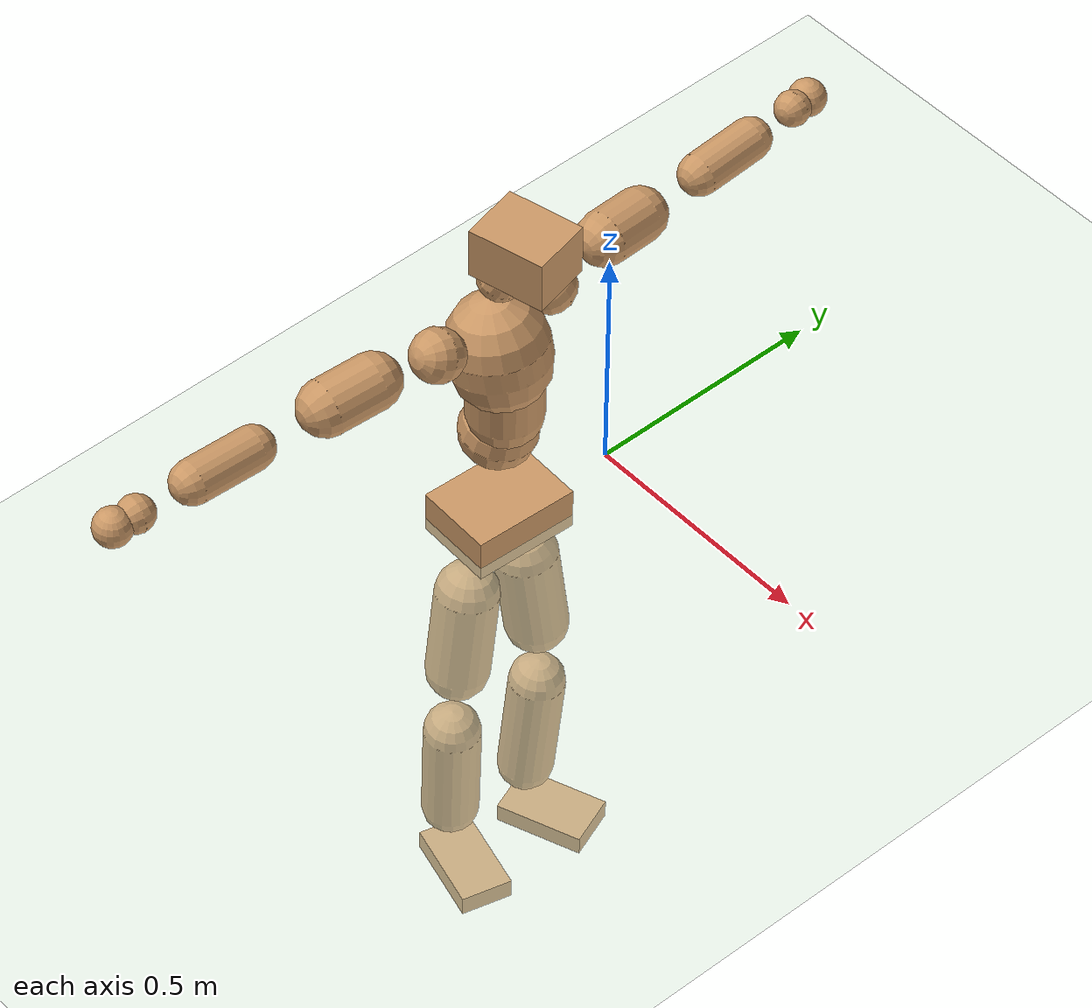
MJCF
<mujoco model="humanoid">
  <compiler coordinate="local" angle="radian"/>
  <default>
    <joint damping="0.0" armature="0.01" stiffness="0.0" limited="true"/>
    <geom conaffinity="1" condim="3" contype="7" margin="0.001" rgba="0.8 0.6 .4 1"/>
  </default>
  <asset>
    <texture type="skybox" builtin="gradient" rgb1=".4 .5 .6" rgb2="0 0 0" width="100" height="100"/>
    <texture builtin="flat" height="1278" mark="cross" markrgb="1 1 1" name="texgeom" random="0.01" rgb1="0.8 0.6 0.4" rgb2="0.8 0.6 0.4" type="cube" width="127"/>
    <texture builtin="checker" height="100" name="texplane" rgb1="0 0 0" rgb2="0.8 0.8 0.8" type="2d" width="100"/>
    <material name="MatPlane" reflectance="0.5" shininess="1" specular="1" texrepeat="60 60" texture="texplane"/>
    <material name="geom" texture="texgeom" texuniform="true"/>
  </asset>
  <worldbody>
    <light cutoff="100" diffuse="1 1 1" dir="-0 0 -1.3" directional="true" exponent="1" pos="0 0 1.3" specular=".1 .1 .1"/>
    <geom conaffinity="1" condim="3" name="floor" pos="0 0 0" rgba="0.8 0.9 0.8 1" size="100 100 .2" type="plane" material="MatPlane"/>
    <body name="Pelvis" pos="-0.0013 -0.252 0.0231">
      <freejoint name="Pelvis"/>
      <geom type="box" contype="1" conaffinity="1" density="5359.374271" pos="-0.0127 0.0005 -0.0084" size="0.0818 0.1088 0.0452" quat="0.9998 0.0000 0.0000 -0.0214" name="Pelvis"/>
      <body name="L_Hip" pos="-0.021 0.0606 -0.0839">
        <joint name="L_Hip_x" type="hinge" pos="0 0 0" axis="1 0 0" stiffness="1600" damping="160" armature="0.02" range="-180.0000 180.0000"/>
        <joint name="L_Hip_y" type="hinge" pos="0 0 0" axis="0 1 0" stiffness="1600" damping="160" armature="0.02" range="-180.0000 180.0000"/>
        <joint name="L_Hip_z" type="hinge" pos="0 0 0" axis="0 0 1" stiffness="1600" damping="160" armature="0.02" range="-180.0000 180.0000"/>
        <geom type="capsule" contype="1" conaffinity="1" density="2040.816327" size="0.0634" fromto="0.0026 0.0110 -0.0927 0.0083 0.0348 -0.2947" name="L_Hip"/>
        <body name="L_Knee" pos="0.0109 0.0458 -0.3874">
          <joint name="L_Knee_x" type="hinge" pos="0 0 0" axis="1 0 0" stiffness="1600" damping="160" armature="0.02" range="-180.0000 180.0000"/>
          <joint name="L_Knee_y" type="hinge" pos="0 0 0" axis="0 1 0" stiffness="1600" damping="160" armature="0.02" range="-180.0000 180.0000"/>
          <joint name="L_Knee_z" type="hinge" pos="0 0 0" axis="0 0 1" stiffness="1600" damping="160" armature="0.02" range="-180.0000 180.0000"/>
          <geom type="capsule" contype="1" conaffinity="1" density="1234.567901" size="0.056" fromto="-0.0073 -0.0029 -0.0856 -0.0290 -0.0117 -0.3392" name="L_Knee"/>
          <body name="L_Ankle" pos="-0.0364 -0.0146 -0.4248">
            <joint name="L_Ankle_x" type="hinge" pos="0 0 0" axis="1 0 0" stiffness="1600" damping="160" armature="0.02" range="-180.0000 180.0000"/>
            <joint name="L_Ankle_y" type="hinge" pos="0 0 0" axis="0 1 0" stiffness="1600" damping="160" armature="0.02" range="-180.0000 180.0000"/>
            <joint name="L_Ankle_z" type="hinge" pos="0 0 0" axis="0 0 1" stiffness="1600" damping="160" armature="0.02" range="-180.0000 180.0000"/>
            <geom type="box" contype="1" conaffinity="1" density="1000.000052" pos="0.0621 0.0232 -0.0310" size="0.0911 0.0553 0.0206" quat="0.9841 0.0000 0.0000 0.1777" name="L_Ankle"/>
            <body name="L_Toe" pos="0.1242 0.0464 -0.0619">
              <joint name="L_Toe_x" type="hinge" pos="0 0 0" axis="1 0 0" stiffness="1000" damping="100" armature="0.02" range="-180.0000 180.0000"/>
              <joint name="L_Toe_y" type="hinge" pos="0 0 0" axis="0 1 0" stiffness="1000" damping="100" armature="0.02" range="-180.0000 180.0000"/>
              <joint name="L_Toe_z" type="hinge" pos="0 0 0" axis="0 0 1" stiffness="1000" damping="100" armature="0.02" range="-180.0000 180.0000"/>
              <geom type="box" contype="1" conaffinity="1" density="7933596.762655" pos="0.0000 0.0000 0.0308" size="0.0011 0.0026 0.001" quat="0.9833 0.0000 0.0000 0.1820" name="L_Toe"/>
            </body>
          </body>
        </body>
      </body>
      <body name="R_Hip" pos="-0.0183 -0.0614 -0.0912">
        <joint name="R_Hip_x" type="hinge" pos="0 0 0" axis="1 0 0" stiffness="1600" damping="160" armature="0.02" range="-180.0000 180.0000"/>
        <joint name="R_Hip_y" type="hinge" pos="0 0 0" axis="0 1 0" stiffness="1600" damping="160" armature="0.02" range="-180.0000 180.0000"/>
        <joint name="R_Hip_z" type="hinge" pos="0 0 0" axis="0 0 1" stiffness="1600" damping="160" armature="0.02" range="-180.0000 180.0000"/>
        <geom type="capsule" contype="1" conaffinity="1" density="2040.816327" size="0.0627" fromto="-0.0006 -0.0109 -0.0921 -0.0019 -0.0343 -0.2894" name="R_Hip"/>
        <body name="R_Knee" pos="-0.0026 -0.0452 -0.3815">
          <joint name="R_Knee_x" type="hinge" pos="0 0 0" axis="1 0 0" stiffness="1600" damping="160" armature="0.02" range="-180.0000 180.0000"/>
          <joint name="R_Knee_y" type="hinge" pos="0 0 0" axis="0 1 0" stiffness="1600" damping="160" armature="0.02" range="-180.0000 180.0000"/>
          <joint name="R_Knee_z" type="hinge" pos="0 0 0" axis="0 0 1" stiffness="1600" damping="160" armature="0.02" range="-180.0000 180.0000"/>
          <geom type="capsule" contype="1" conaffinity="1" density="1234.567901" size="0.0564" fromto="-0.0072 0.0039 -0.0861 -0.0276 0.0149 -0.3302" name="R_Knee"/>
          <body name="R_Ankle" pos="-0.0348 0.0188 -0.4162">
            <joint name="R_Ankle_x" type="hinge" pos="0 0 0" axis="1 0 0" stiffness="1600" damping="160" armature="0.02" range="-180.0000 180.0000"/>
            <joint name="R_Ankle_y" type="hinge" pos="0 0 0" axis="0 1 0" stiffness="1600" damping="160" armature="0.02" range="-180.0000 180.0000"/>
            <joint name="R_Ankle_z" type="hinge" pos="0 0 0" axis="0 0 1" stiffness="1600" damping="160" armature="0.02" range="-180.0000 180.0000"/>
            <geom type="box" contype="1" conaffinity="1" density="1000.00005" pos="0.0674 -0.0177 -0.0307" size="0.0947 0.0529 0.0216" quat="0.9918 0.0000 0.0000 -0.1279" name="R_Ankle"/>
            <body name="R_Toe" pos="0.1349 -0.0354 -0.0614">
              <joint name="R_Toe_x" type="hinge" pos="0 0 0" axis="1 0 0" stiffness="1000" damping="100" armature="0.02" range="-180.0000 180.0000"/>
              <joint name="R_Toe_y" type="hinge" pos="0 0 0" axis="0 1 0" stiffness="1000" damping="100" armature="0.02" range="-180.0000 180.0000"/>
              <joint name="R_Toe_z" type="hinge" pos="0 0 0" axis="0 0 1" stiffness="1000" damping="100" armature="0.02" range="-180.0000 180.0000"/>
              <geom type="box" contype="1" conaffinity="1" density="8256009.935906" pos="0.0000 0.0000 0.0317" size="0.001 0.0026 0.0011" quat="0.9929 0.0000 0.0000 -0.1193" name="R_Toe"/>
            </body>
          </body>
        </body>
      </body>
      <body name="Torso" pos="-0.0369 0.004 0.1247">
        <joint name="Torso_x" type="hinge" pos="0 0 0" axis="1 0 0" stiffness="2000" damping="200" armature="0.02" range="-180.0000 180.0000"/>
        <joint name="Torso_y" type="hinge" pos="0 0 0" axis="0 1 0" stiffness="2000" damping="200" armature="0.02" range="-180.0000 180.0000"/>
        <joint name="Torso_z" type="hinge" pos="0 0 0" axis="0 0 1" stiffness="2000" damping="200" armature="0.02" range="-180.0000 180.0000"/>
        <geom type="capsule" contype="1" conaffinity="1" density="2040.816327" size="0.0763" fromto="0.0154 0.0024 0.0747 0.0145 0.0023 0.0705" name="Torso"/>
        <body name="Spine" pos="0.0299 0.0046 0.1452">
          <joint name="Spine_x" type="hinge" pos="0 0 0" axis="1 0 0" stiffness="2000" damping="200" armature="0.02" range="-180.0000 180.0000"/>
          <joint name="Spine_y" type="hinge" pos="0 0 0" axis="0 1 0" stiffness="2000" damping="200" armature="0.02" range="-180.0000 180.0000"/>
          <joint name="Spine_z" type="hinge" pos="0 0 0" axis="0 0 1" stiffness="2000" damping="200" armature="0.02" range="-180.0000 180.0000"/>
          <geom type="capsule" contype="1" conaffinity="1" density="2040.816327" size="0.0748" fromto="0.0036 -0.0030 0.0746 -0.0007 0.0006 -0.0148" name="Spine"/>
          <body name="Chest" pos="0.0029 -0.0024 0.0598">
            <joint name="Chest_x" type="hinge" pos="0 0 0" axis="1 0 0" stiffness="2000" damping="200" armature="0.02" range="-180.0000 180.0000"/>
            <joint name="Chest_y" type="hinge" pos="0 0 0" axis="0 1 0" stiffness="2000" damping="200" armature="0.02" range="-180.0000 180.0000"/>
            <joint name="Chest_z" type="hinge" pos="0 0 0" axis="0 0 1" stiffness="2000" damping="200" armature="0.02" range="-180.0000 180.0000"/>
            <geom type="capsule" contype="1" conaffinity="1" density="2040.816327" size="0.0983" fromto="-0.0161 -0.0049 0.0969 -0.0086 -0.0026 0.0521" name="Chest"/>
            <body name="Neck" pos="-0.0314 -0.0114 0.2167">
              <joint name="Neck_x" type="hinge" pos="0 0 0" axis="1 0 0" stiffness="1000" damping="100" armature="0.02" range="-180.0000 180.0000"/>
              <joint name="Neck_y" type="hinge" pos="0 0 0" axis="0 1 0" stiffness="1000" damping="100" armature="0.02" range="-180.0000 180.0000"/>
              <joint name="Neck_z" type="hinge" pos="0 0 0" axis="0 0 1" stiffness="1000" damping="100" armature="0.02" range="-180.0000 180.0000"/>
              <geom type="capsule" contype="1" conaffinity="1" density="1000" size="0.0445" fromto="0.0252 0.0052 0.0462 0.0261 0.0054 0.0480" name="Neck"/>
              <body name="Head" pos="0.0513 0.0106 0.0942">
                <joint name="Head_x" type="hinge" pos="0 0 0" axis="1 0 0" stiffness="1000" damping="100" armature="0.02" range="-180.0000 180.0000"/>
                <joint name="Head_y" type="hinge" pos="0 0 0" axis="0 1 0" stiffness="1000" damping="100" armature="0.02" range="-180.0000 180.0000"/>
                <joint name="Head_z" type="hinge" pos="0 0 0" axis="0 0 1" stiffness="1000" damping="100" armature="0.02" range="-180.0000 180.0000"/>
                <geom type="box" contype="1" conaffinity="1" density="2249.999987" pos="0.0267 0.0063 0.0481" size="0.0783 0.0623 0.0532" quat="0.9933 0.0000 0.0000 0.1154" name="Head"/>
              </body>
            </body>
            <body name="L_Thorax" pos="-0.0187 0.0691 0.1163">
              <joint name="L_Thorax_x" type="hinge" pos="0 0 0" axis="1 0 0" stiffness="1000" damping="100" armature="0.02" range="-180.0000 180.0000"/>
              <joint name="L_Thorax_y" type="hinge" pos="0 0 0" axis="0 1 0" stiffness="1000" damping="100" armature="0.02" range="-180.0000 180.0000"/>
              <joint name="L_Thorax_z" type="hinge" pos="0 0 0" axis="0 0 1" stiffness="1000" damping="100" armature="0.02" range="-180.0000 180.0000"/>
              <geom type="capsule" contype="1" conaffinity="1" density="1000" size="0.0519" fromto="-0.0073 0.0587 0.0236 -0.0075 0.0605 0.0243" name="L_Thorax"/>
              <body name="L_Shoulder" pos="-0.0148 0.1192 0.0479">
                <joint name="L_Shoulder_x" type="hinge" pos="0 0 0" axis="1 0 0" stiffness="1000" damping="100" armature="0.02" range="-720.0000 720.0000"/>
                <joint name="L_Shoulder_y" type="hinge" pos="0 0 0" axis="0 1 0" stiffness="1000" damping="100" armature="0.02" range="-720.0000 720.0000"/>
                <joint name="L_Shoulder_z" type="hinge" pos="0 0 0" axis="0 0 1" stiffness="1000" damping="100" armature="0.02" range="-720.0000 720.0000"/>
                <geom type="capsule" contype="1" conaffinity="1" density="1000" size="0.0539" fromto="-0.0067 0.0834 -0.0055 -0.0143 0.1778 -0.0117" name="L_Shoulder"/>
                <body name="L_Elbow" pos="-0.021 0.2612 -0.0172">
                  <joint name="L_Elbow_x" type="hinge" pos="0 0 0" axis="1 0 0" stiffness="1000" damping="100" armature="0.02" range="-720.0000 720.0000"/>
                  <joint name="L_Elbow_y" type="hinge" pos="0 0 0" axis="0 1 0" stiffness="1000" damping="100" armature="0.02" range="-720.0000 720.0000"/>
                  <joint name="L_Elbow_z" type="hinge" pos="0 0 0" axis="0 0 1" stiffness="1000" damping="100" armature="0.02" range="-720.0000 720.0000"/>
                  <geom type="capsule" contype="1" conaffinity="1" density="1000" size="0.0418" fromto="-0.0020 0.0717 0.0036 -0.0055 0.2017 0.0100" name="L_Elbow"/>
                  <body name="L_Wrist" pos="-0.0075 0.2734 0.0135">
                    <joint name="L_Wrist_x" type="hinge" pos="0 0 0" axis="1 0 0" stiffness="600" damping="60" armature="0.02" range="-180.0000 180.0000"/>
                    <joint name="L_Wrist_y" type="hinge" pos="0 0 0" axis="0 1 0" stiffness="600" damping="60" armature="0.02" range="-180.0000 180.0000"/>
                    <joint name="L_Wrist_z" type="hinge" pos="0 0 0" axis="0 0 1" stiffness="600" damping="60" armature="0.02" range="-180.0000 180.0000"/>
                    <geom type="capsule" contype="1" conaffinity="1" density="1000" size="0.0353" fromto="-0.0081 0.0444 -0.0054 -0.0085 0.0463 -0.0057" name="L_Wrist"/>
                    <body name="L_Hand" pos="-0.0166 0.0907 -0.0111">
                      <joint name="L_Hand_x" type="hinge" pos="0 0 0" axis="1 0 0" stiffness="600" damping="60" armature="0.02" range="-180.0000 180.0000"/>
                      <joint name="L_Hand_y" type="hinge" pos="0 0 0" axis="0 1 0" stiffness="600" damping="60" armature="0.02" range="-180.0000 180.0000"/>
                      <joint name="L_Hand_z" type="hinge" pos="0 0 0" axis="0 0 1" stiffness="600" damping="60" armature="0.02" range="-180.0000 180.0000"/>
                      <geom type="sphere" contype="1" conaffinity="1" density="1000" size="0.0371" pos="0.0000 0.0000 0.0000" name="L_Hand"/>
                    </body>
                  </body>
                </body>
              </body>
            </body>
            <body name="R_Thorax" pos="-0.024 -0.0802 0.1138">
              <joint name="R_Thorax_x" type="hinge" pos="0 0 0" axis="1 0 0" stiffness="1000" damping="100" armature="0.02" range="-180.0000 180.0000"/>
              <joint name="R_Thorax_y" type="hinge" pos="0 0 0" axis="0 1 0" stiffness="1000" damping="100" armature="0.02" range="-180.0000 180.0000"/>
              <joint name="R_Thorax_z" type="hinge" pos="0 0 0" axis="0 0 1" stiffness="1000" damping="100" armature="0.02" range="-180.0000 180.0000"/>
              <geom type="capsule" contype="1" conaffinity="1" density="1000" size="0.0526" fromto="-0.0026 -0.0552 0.0243 -0.0027 -0.0571 0.0251" name="R_Thorax"/>
              <body name="R_Shoulder" pos="-0.0053 -0.1123 0.0495">
                <joint name="R_Shoulder_x" type="hinge" pos="0 0 0" axis="1 0 0" stiffness="1000" damping="100" armature="0.02" range="-720.0000 720.0000"/>
                <joint name="R_Shoulder_y" type="hinge" pos="0 0 0" axis="0 1 0" stiffness="1000" damping="100" armature="0.02" range="-720.0000 720.0000"/>
                <joint name="R_Shoulder_z" type="hinge" pos="0 0 0" axis="0 0 1" stiffness="1000" damping="100" armature="0.02" range="-720.0000 720.0000"/>
                <geom type="capsule" contype="1" conaffinity="1" density="1000" size="0.0553" fromto="-0.0094 -0.0845 -0.0060 -0.0204 -0.1839 -0.0131" name="R_Shoulder"/>
                <body name="R_Elbow" pos="-0.0298 -0.2684 -0.0191">
                  <joint name="R_Elbow_x" type="hinge" pos="0 0 0" axis="1 0 0" stiffness="1000" damping="100" armature="0.02" range="-720.0000 720.0000"/>
                  <joint name="R_Elbow_y" type="hinge" pos="0 0 0" axis="0 1 0" stiffness="1000" damping="100" armature="0.02" range="-720.0000 720.0000"/>
                  <joint name="R_Elbow_z" type="hinge" pos="0 0 0" axis="0 0 1" stiffness="1000" damping="100" armature="0.02" range="-720.0000 720.0000"/>
                  <geom type="capsule" contype="1" conaffinity="1" density="1000" size="0.0426" fromto="-0.0014 -0.0726 0.0023 -0.0040 -0.2071 0.0064" name="R_Elbow"/>
                  <body name="R_Wrist" pos="-0.0054 -0.2797 0.0087">
                    <joint name="R_Wrist_x" type="hinge" pos="0 0 0" axis="1 0 0" stiffness="600" damping="60" armature="0.02" range="-180.0000 180.0000"/>
                    <joint name="R_Wrist_y" type="hinge" pos="0 0 0" axis="0 1 0" stiffness="600" damping="60" armature="0.02" range="-180.0000 180.0000"/>
                    <joint name="R_Wrist_z" type="hinge" pos="0 0 0" axis="0 0 1" stiffness="600" damping="60" armature="0.02" range="-180.0000 180.0000"/>
                    <geom type="capsule" contype="1" conaffinity="1" density="1000" size="0.0363" fromto="-0.0053 -0.0458 -0.0045 -0.0055 -0.0478 -0.0046" name="R_Wrist"/>
                    <body name="R_Hand" pos="-0.0109 -0.0937 -0.0091">
                      <joint name="R_Hand_x" type="hinge" pos="0 0 0" axis="1 0 0" stiffness="600" damping="60" armature="0.02" range="-180.0000 180.0000"/>
                      <joint name="R_Hand_y" type="hinge" pos="0 0 0" axis="0 1 0" stiffness="600" damping="60" armature="0.02" range="-180.0000 180.0000"/>
                      <joint name="R_Hand_z" type="hinge" pos="0 0 0" axis="0 0 1" stiffness="600" damping="60" armature="0.02" range="-180.0000 180.0000"/>
                      <geom type="sphere" contype="1" conaffinity="1" density="1000" size="0.0380" pos="0.0000 0.0000 0.0000" name="R_Hand"/>
                    </body>
                  </body>
                </body>
              </body>
            </body>
          </body>
        </body>
      </body>
    </body>
  </worldbody>
  <actuator>
    <motor name="L_Hip_x" joint="L_Hip_x" gear="500"/>
    <motor name="L_Hip_y" joint="L_Hip_y" gear="500"/>
    <motor name="L_Hip_z" joint="L_Hip_z" gear="500"/>
    <motor name="L_Knee_x" joint="L_Knee_x" gear="500"/>
    <motor name="L_Knee_y" joint="L_Knee_y" gear="500"/>
    <motor name="L_Knee_z" joint="L_Knee_z" gear="500"/>
    <motor name="L_Ankle_x" joint="L_Ankle_x" gear="500"/>
    <motor name="L_Ankle_y" joint="L_Ankle_y" gear="500"/>
    <motor name="L_Ankle_z" joint="L_Ankle_z" gear="500"/>
    <motor name="L_Toe_x" joint="L_Toe_x" gear="500"/>
    <motor name="L_Toe_y" joint="L_Toe_y" gear="500"/>
    <motor name="L_Toe_z" joint="L_Toe_z" gear="500"/>
    <motor name="R_Hip_x" joint="R_Hip_x" gear="500"/>
    <motor name="R_Hip_y" joint="R_Hip_y" gear="500"/>
    <motor name="R_Hip_z" joint="R_Hip_z" gear="500"/>
    <motor name="R_Knee_x" joint="R_Knee_x" gear="500"/>
    <motor name="R_Knee_y" joint="R_Knee_y" gear="500"/>
    <motor name="R_Knee_z" joint="R_Knee_z" gear="500"/>
    <motor name="R_Ankle_x" joint="R_Ankle_x" gear="500"/>
    <motor name="R_Ankle_y" joint="R_Ankle_y" gear="500"/>
    <motor name="R_Ankle_z" joint="R_Ankle_z" gear="500"/>
    <motor name="R_Toe_x" joint="R_Toe_x" gear="500"/>
    <motor name="R_Toe_y" joint="R_Toe_y" gear="500"/>
    <motor name="R_Toe_z" joint="R_Toe_z" gear="500"/>
    <motor name="Torso_x" joint="Torso_x" gear="500"/>
    <motor name="Torso_y" joint="Torso_y" gear="500"/>
    <motor name="Torso_z" joint="Torso_z" gear="500"/>
    <motor name="Spine_x" joint="Spine_x" gear="500"/>
    <motor name="Spine_y" joint="Spine_y" gear="500"/>
    <motor name="Spine_z" joint="Spine_z" gear="500"/>
    <motor name="Chest_x" joint="Chest_x" gear="500"/>
    <motor name="Chest_y" joint="Chest_y" gear="500"/>
    <motor name="Chest_z" joint="Chest_z" gear="500"/>
    <motor name="Neck_x" joint="Neck_x" gear="500"/>
    <motor name="Neck_y" joint="Neck_y" gear="500"/>
    <motor name="Neck_z" joint="Neck_z" gear="500"/>
    <motor name="Head_x" joint="Head_x" gear="500"/>
    <motor name="Head_y" joint="Head_y" gear="500"/>
    <motor name="Head_z" joint="Head_z" gear="500"/>
    <motor name="L_Thorax_x" joint="L_Thorax_x" gear="500"/>
    <motor name="L_Thorax_y" joint="L_Thorax_y" gear="500"/>
    <motor name="L_Thorax_z" joint="L_Thorax_z" gear="500"/>
    <motor name="L_Shoulder_x" joint="L_Shoulder_x" gear="500"/>
    <motor name="L_Shoulder_y" joint="L_Shoulder_y" gear="500"/>
    <motor name="L_Shoulder_z" joint="L_Shoulder_z" gear="500"/>
    <motor name="L_Elbow_x" joint="L_Elbow_x" gear="500"/>
    <motor name="L_Elbow_y" joint="L_Elbow_y" gear="500"/>
    <motor name="L_Elbow_z" joint="L_Elbow_z" gear="500"/>
    <motor name="L_Wrist_x" joint="L_Wrist_x" gear="500"/>
    <motor name="L_Wrist_y" joint="L_Wrist_y" gear="500"/>
    <motor name="L_Wrist_z" joint="L_Wrist_z" gear="500"/>
    <motor name="L_Hand_x" joint="L_Hand_x" gear="500"/>
    <motor name="L_Hand_y" joint="L_Hand_y" gear="500"/>
    <motor name="L_Hand_z" joint="L_Hand_z" gear="500"/>
    <motor name="R_Thorax_x" joint="R_Thorax_x" gear="500"/>
    <motor name="R_Thorax_y" joint="R_Thorax_y" gear="500"/>
    <motor name="R_Thorax_z" joint="R_Thorax_z" gear="500"/>
    <motor name="R_Shoulder_x" joint="R_Shoulder_x" gear="500"/>
    <motor name="R_Shoulder_y" joint="R_Shoulder_y" gear="500"/>
    <motor name="R_Shoulder_z" joint="R_Shoulder_z" gear="500"/>
    <motor name="R_Elbow_x" joint="R_Elbow_x" gear="500"/>
    <motor name="R_Elbow_y" joint="R_Elbow_y" gear="500"/>
    <motor name="R_Elbow_z" joint="R_Elbow_z" gear="500"/>
    <motor name="R_Wrist_x" joint="R_Wrist_x" gear="500"/>
    <motor name="R_Wrist_y" joint="R_Wrist_y" gear="500"/>
    <motor name="R_Wrist_z" joint="R_Wrist_z" gear="500"/>
    <motor name="R_Hand_x" joint="R_Hand_x" gear="500"/>
    <motor name="R_Hand_y" joint="R_Hand_y" gear="500"/>
    <motor name="R_Hand_z" joint="R_Hand_z" gear="500"/>
  </actuator>
  <contact>
    <exclude body1="Torso" body2="Chest"/>
    <exclude body1="Head" body2="Chest"/>
    <exclude body1="R_Knee" body2="R_Toe"/>
    <exclude body1="R_Knee" body2="L_Ankle"/>
    <exclude body1="R_Knee" body2="L_Toe"/>
    <exclude body1="L_Knee" body2="L_Toe"/>
    <exclude body1="L_Knee" body2="R_Ankle"/>
    <exclude body1="L_Knee" body2="R_Toe"/>
    <exclude body1="L_Shoulder" body2="Chest"/>
    <exclude body1="R_Shoulder" body2="Chest"/>
  </contact>
  <sensor/>
  <size njmax="700" nconmax="700"/>
</mujoco>
